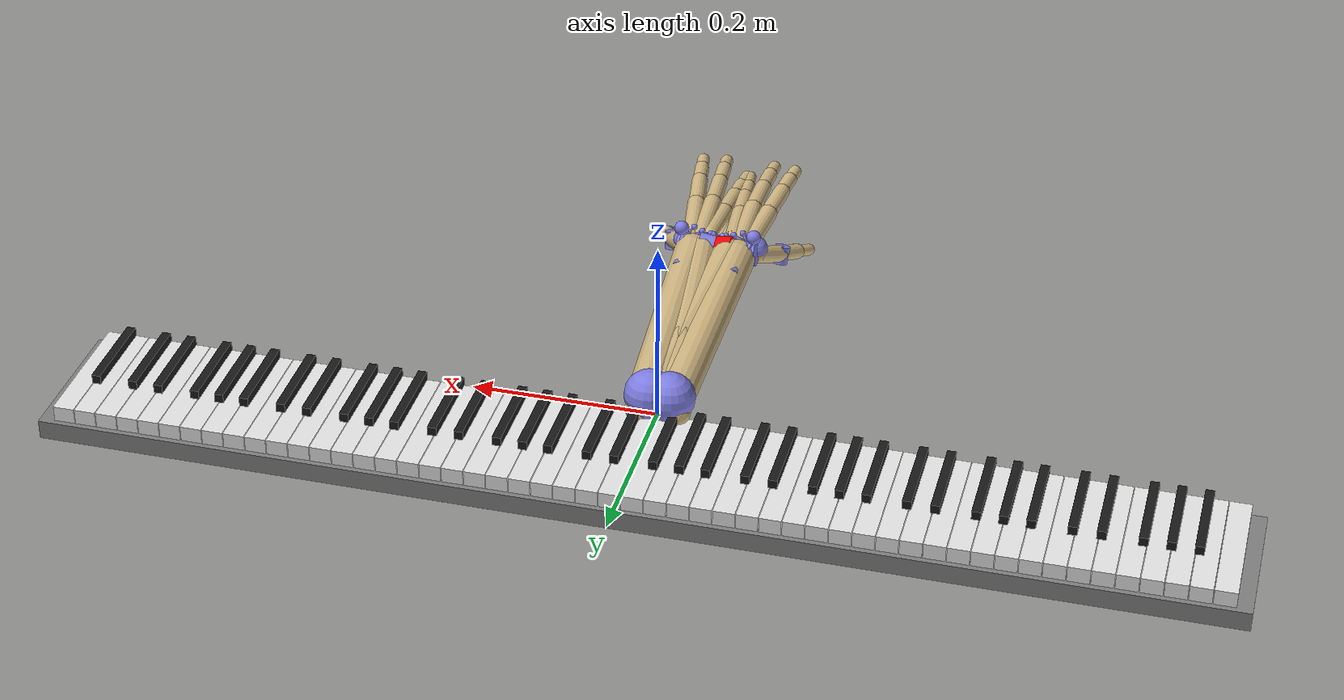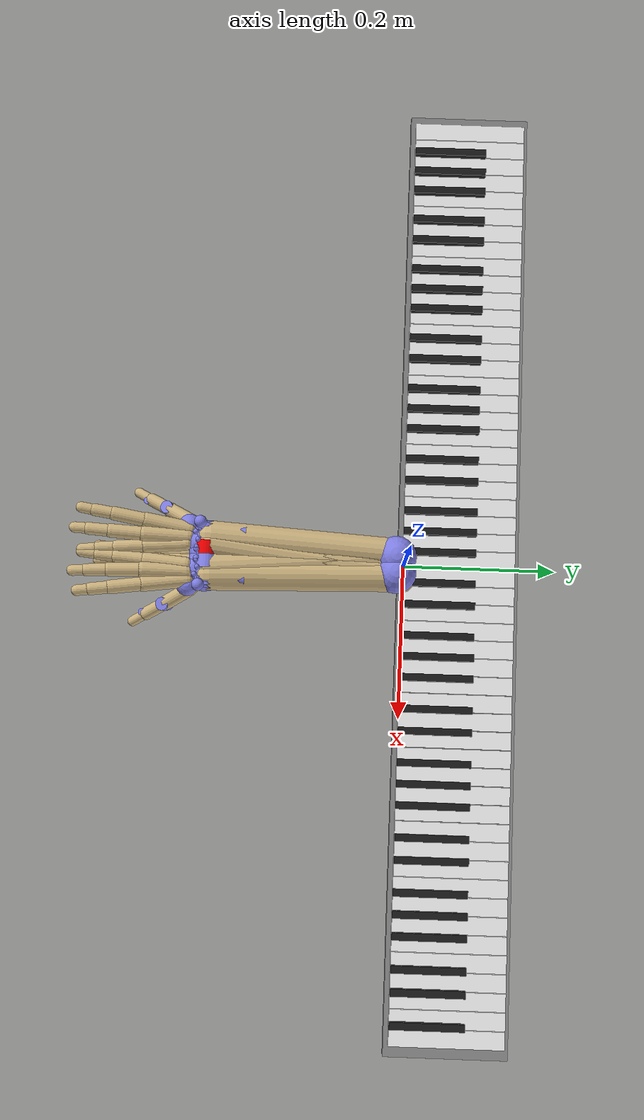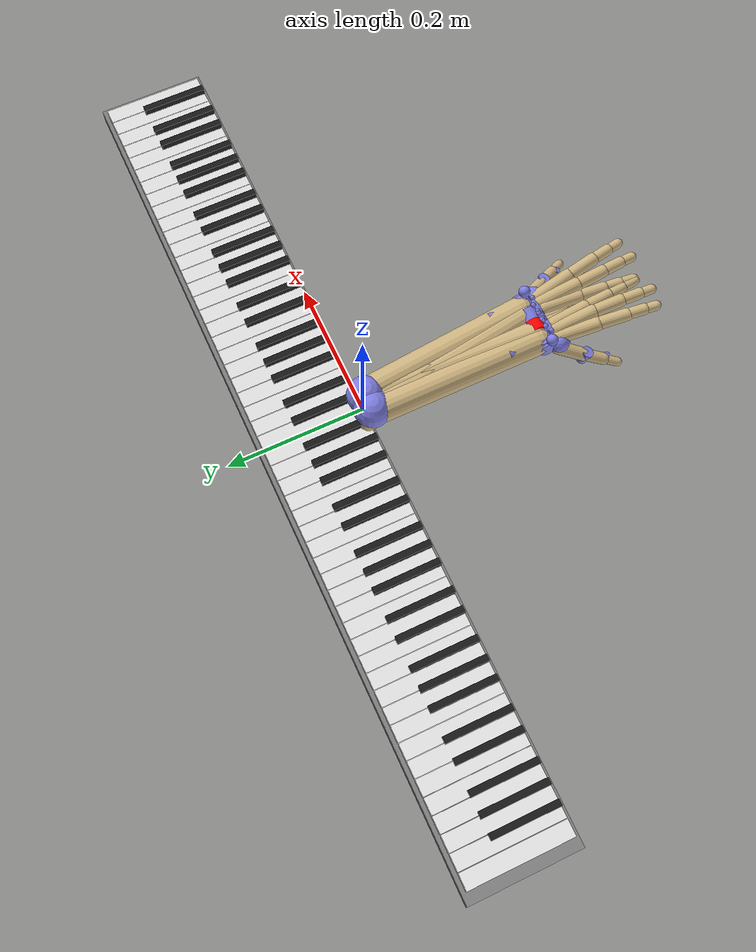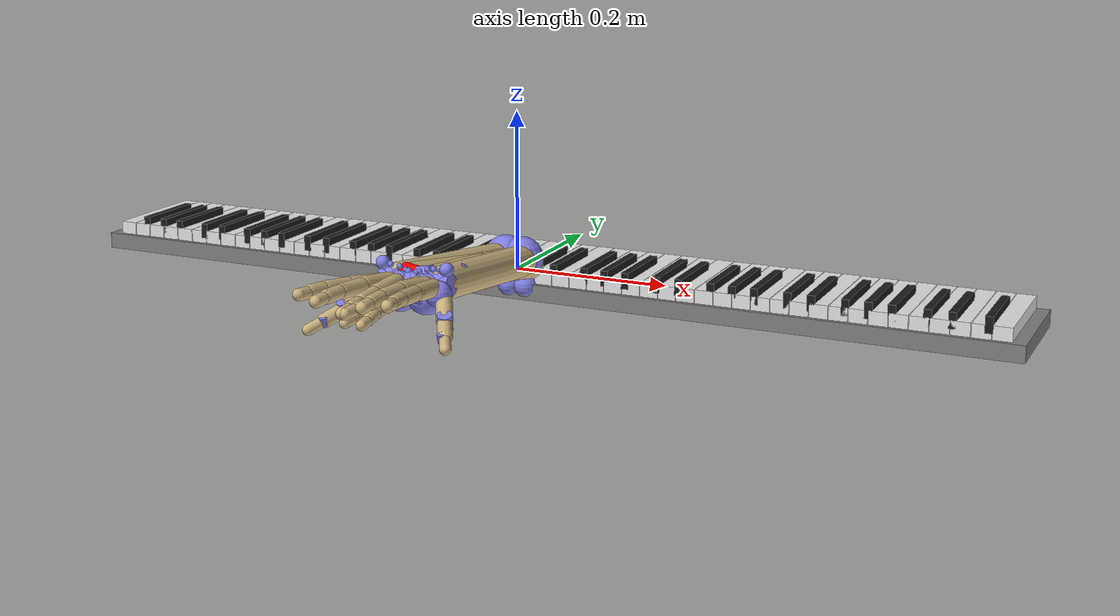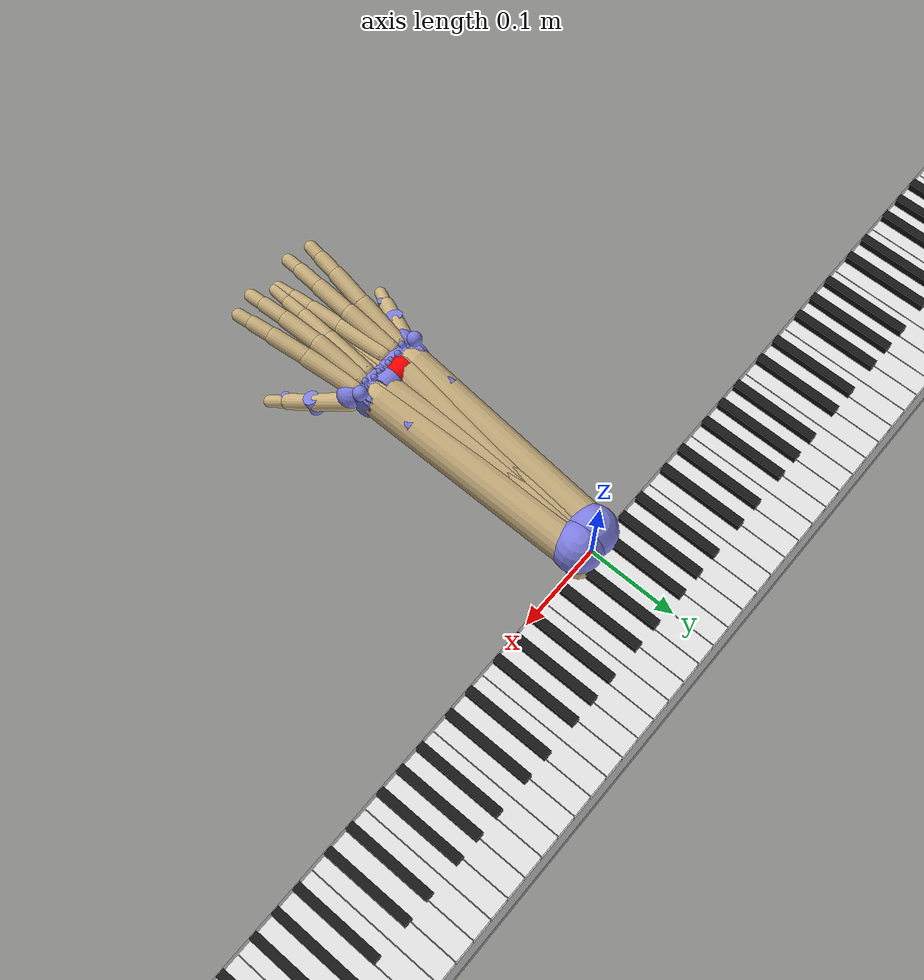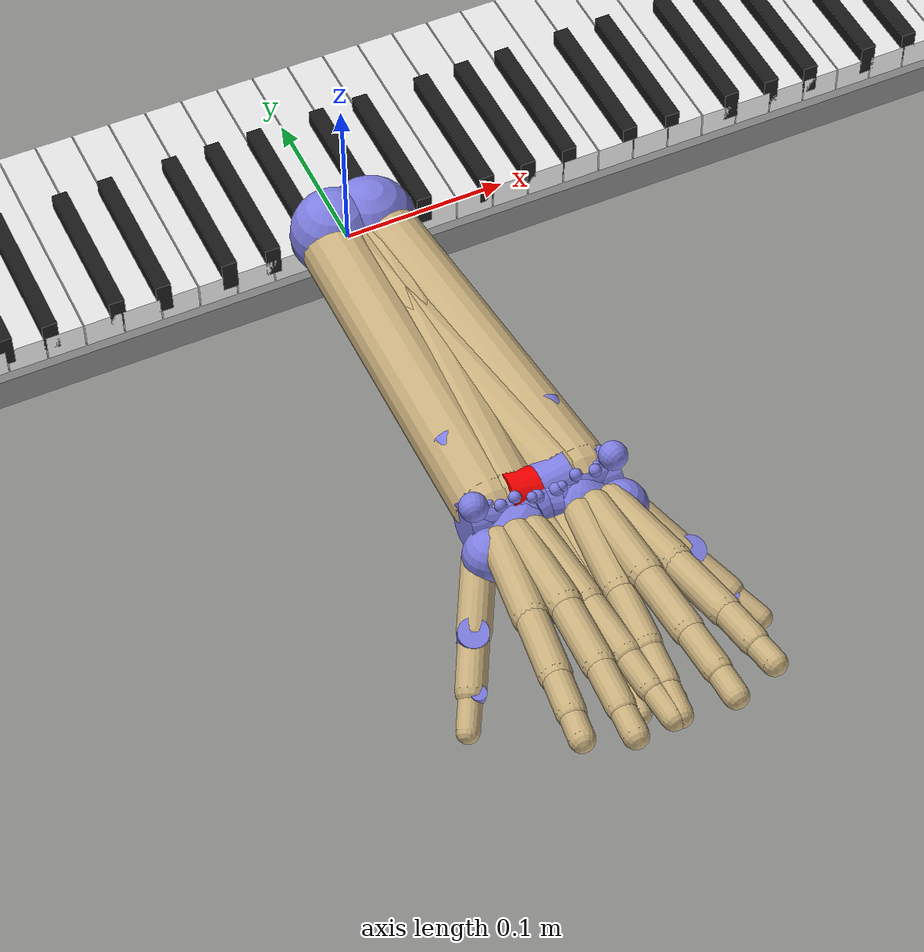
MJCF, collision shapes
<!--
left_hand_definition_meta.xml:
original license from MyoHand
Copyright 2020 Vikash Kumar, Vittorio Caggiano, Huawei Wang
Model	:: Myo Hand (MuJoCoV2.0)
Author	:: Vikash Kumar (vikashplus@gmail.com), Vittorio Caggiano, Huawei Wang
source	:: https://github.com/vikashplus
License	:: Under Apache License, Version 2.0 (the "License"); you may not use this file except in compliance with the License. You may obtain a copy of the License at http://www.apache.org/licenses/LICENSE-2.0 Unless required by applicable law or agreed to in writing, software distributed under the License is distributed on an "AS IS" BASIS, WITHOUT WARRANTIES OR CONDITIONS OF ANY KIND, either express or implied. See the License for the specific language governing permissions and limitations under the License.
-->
<mujoco model="MUSIC-Hand-v0.15">

    <include file="defaults.xml" />
    <include file="left_assets/left_hand_definition_meta.xml" />
    <include file="right_assets/right_hand_definition_meta.xml" />

    <include file="left_assets/left_hand_actuators_joint.xml"/>
    <include file="right_assets/right_hand_actuators_joint.xml"/>

    <asset>
    </asset>

    <visual>
        <global offwidth="1920" offheight="1080"/>
        <headlight ambient=".5 .5 .5" diffuse="0.50 0.50 0.50" specular="0.50 0.50 0.50"/>
        <rgba actuator='.7 .4 .4 1' actuatorpositive='1 0 0 1' actuatornegative='.175 .1 .1 1'/>
    </visual>

    <worldbody>

        <include file="left_assets/left_hand_6d_root.xml"/>
        <include file="right_assets/right_hand_6d_root.xml"/>

        <include file="piano_assets/piano_ds6.5.xml"/>

    </worldbody>

</mujoco>

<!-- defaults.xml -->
<mujocoinclude model="MUSIC-Hand-v0.15">
        <compiler inertiafromgeom="auto" angle="radian" balanceinertia="true" boundmass="0.001" boundinertia=".0001" meshdir="." texturedir="."/>
        <size njmax="1000" nconmax="400" nuser_jnt="1"/>
        <!-- 480 FPS -->
        <option timestep="0.00208333333" impratio="10" gravity="0 0 0"/>

        <asset>
            <texture name="texgeom" type="cube" builtin="flat" mark="cross" width="127" height="1278" rgb1="0.7 0.7 0.7" rgb2="0.9 0.9 0.9" markrgb="1 1 1" random="0.01"/>
            <material name="geom" texture="texgeom" texuniform="true"/>
            <material name="MatSkin" specular="0.2" shininess=".1" reflectance="0.5" rgba="0.9 .7 .5 1"/>
        </asset>

        <default>
            <default class="music-hand">
              <joint limited="true" damping="0.05" armature="1e-4" stiffness="0"/>
              <geom contype="0" conaffinity="0" condim="3" rgba="0.8 0.8 .8 1" solref=".02 1" solimp=".8 .8 .01" material="geom"/>
              <site size="0.0012" rgba=".2 .6 .2 1" group="3"/>
              <tendon width="0.001" rgba=".95 .3 .3 1" limited="false" />
              <default class="L:skin_arm">
                <geom type="capsule" group="5" contype="56" conaffinity="4" condim="1" rgba="0.8 0.7 .5 1" margin="0.001" material="MatSkin"/>
              </default>
              <default class="L:skin_palm">
                <geom type="capsule" group="4" contype="56" conaffinity="2" condim="3" rgba="0.8 0.7 .5 1" margin="0.001" material="MatSkin"/>
              </default>
              <default class="L:skin_finger">
                <geom type="capsule" group="5" contype="59" conaffinity="1" condim="3" rgba="0.8 0.7 .5 1" margin="0.001" material="MatSkin"/>
              </default>
              <default class="R:skin_arm">
                <geom type="capsule" group="5" contype="7" conaffinity="32" condim="1" rgba="0.8 0.7 .5 1" margin="0.001" material="MatSkin"/>
              </default>
              <default class="R:skin_palm">
                <geom type="capsule" group="4" contype="7" conaffinity="16" condim="3" rgba="0.8 0.7 .5 1" margin="0.001" material="MatSkin"/>
              </default>
              <default class="R:skin_finger">
                <geom type="capsule" group="5" contype="31" conaffinity="8" condim="3" rgba="0.8 0.7 .5 1" margin="0.001" material="MatSkin"/>
              </default>
              <default class="wrap">
                <geom rgba=".5 .5 .9 1" group="3" contype="0" conaffinity="0"/>
              </default>
              <default class="muscle">
                <muscle ctrllimited="true" ctrlrange="0 1" />
              </default>
            </default>
            <default class="white_key">
            <!--   range limit is decided by end position with travel depth of 0.01 i.e. arcsin(0.01/0.148)   -->
            <joint type="hinge" axis="1 0 0" pos="0 0 0" limited="true" range="-0.0676190854 0" solreflimit=".01 1" solimplimit=".95 .99 .001" stiffness="2" damping="0.05" armature="1e-3" />
            <geom group="2" type="box" condim="3" contype="9" conaffinity="0" solref=".02 1" solimp=".9 .95 .001" margin="0" priority="1" size="0.011313735 0.074 0.0105" pos="0 0.074 0" mass="0.04" rgba=".9 .9 .9 1"/>
            </default>
            <default class="black_key">
            <!--   range limit is decided by end position with travel depth of 0.008, i.e. arcsin(0.008/0.096)   -->
            <joint type="hinge" axis="1 0 0" pos="0 0 0" limited="true" range="-0.08333333333 0" solreflimit=".01 1" solimplimit=".95 .99 .001" stiffness="2" damping="0.05" armature="1e-3" />
            <!--   top width 0.0095, bottom width 0.011, bottom width with spacing 0.015   -->
            <geom group="2" type="box" condim="3" contype="9" conaffinity="0" solref=".02 1" solimp=".9 .95 .001" margin="0" priority="1" size="0.00475 0.048 0.01" pos="0 0.048 0" mass="0.02" rgba=".1 .1 .1 1"/>
            </default>
        </default>

      <custom>
        <numeric data="30" name="max_contact_points"/>
        <numeric data="500" name="max_geom_pairs"/>
      </custom>

</mujocoinclude>

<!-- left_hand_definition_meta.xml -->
<mujocoinclude model="MUSIC-Hand-v0.15">
        <asset>
            <!-- Modified from MyoHand. -->

            <mesh name="L:humerus" file="left_meshes/humerus.stl" scale="1 1 1"/>
            <mesh name="L:ulna" file="left_meshes/ulna.stl" scale="1 1 1"/>
            <mesh name="L:radius" file="left_meshes/radius.stl" scale="1 1 1"/>
            <mesh name="L:lunate" file="left_meshes/lunate.stl" scale="1 1 1"/>
            <mesh name="L:scaphoid" file="left_meshes/scaphoid.stl" scale="1 1 1"/>
            <mesh name="L:pisiform" file="left_meshes/pisiform.stl" scale="1 1 1"/>
            <mesh name="L:triquetrum" file="left_meshes/triquetrum.stl" scale="1 1 1"/>
            <mesh name="L:capitate" file="left_meshes/capitate.stl" scale="1 1 1"/>
            <mesh name="L:trapezium" file="left_meshes/trapezium.stl" scale="1 1 1"/>
            <mesh name="L:1mc" file="left_meshes/1mc.stl" scale="1 1 1"/>
            <mesh name="L:thumbprox" file="left_meshes/thumbprox.stl" scale="1 1 1"/>
            <mesh name="L:thumbdist" file="left_meshes/thumbdist.stl" scale="1 1 1"/>
            <mesh name="L:trapezoid" file="left_meshes/trapezoid.stl" scale="1 1 1"/>
            <mesh name="L:hamate" file="left_meshes/hamate.stl" scale="1 1 1"/>
            <mesh name="L:2mc" file="left_meshes/2mc.stl" scale="1 1 1"/>
            <mesh name="L:2proxph" file="left_meshes/2proxph.stl" scale="1 1 1"/>
            <mesh name="L:2midph" file="left_meshes/2midph.stl" scale="1 1 1"/>
            <mesh name="L:2distph" file="left_meshes/2distph.stl" scale="1 1 1"/>
            <mesh name="L:3mc" file="left_meshes/3mc.stl" scale="1 1 1"/>
            <mesh name="L:3proxph" file="left_meshes/3proxph.stl" scale="1 1 1"/>
            <mesh name="L:3midph" file="left_meshes/3midph.stl" scale="1 1 1"/>
            <mesh name="L:3distph" file="left_meshes/3distph.stl" scale="1 1 1"/>
            <mesh name="L:4mc" file="left_meshes/4mc.stl" scale="1 1 1"/>
            <mesh name="L:4proxph" file="left_meshes/4proxph.stl" scale="1 1 1"/>
            <mesh name="L:4midph" file="left_meshes/4midph.stl" scale="1 1 1"/>
            <mesh name="L:4distph" file="left_meshes/4distph.stl" scale="1 1 1"/>
            <mesh name="L:5mc" file="left_meshes/5mc.stl" scale="1 1 1"/>
            <mesh name="L:5proxph" file="left_meshes/5proxph.stl" scale="1 1 1"/>
            <mesh name="L:5midph" file="left_meshes/5midph.stl" scale="1 1 1"/>
            <mesh name="L:5distph" file="left_meshes/5distph.stl" scale="1 1 1"/>
        </asset>

        <contact>
            <exclude body1="L:proxph2" body2="L:proxph3"/>
            <exclude body1="L:proxph3" body2="L:proxph4"/>
            <exclude body1="L:proxph4" body2="L:proxph5"/>

            <exclude body1="L:proxph2" body2="L:proxph4"/>
            <exclude body1="L:proxph2" body2="L:proxph5"/>
            <exclude body1="L:proxph3" body2="L:proxph5"/>

        </contact>

</mujocoinclude>

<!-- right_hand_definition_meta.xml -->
<mujocoinclude model="MUSIC-Hand-v0.15">
        <asset>
            <!-- Extracted from MyoHand. -->

            <mesh name="R:humerus" file="right_meshes/humerus.stl" scale="1 1 1"/>
            <mesh name="R:ulna" file="right_meshes/ulna.stl" scale="1 1 1"/>
            <mesh name="R:radius" file="right_meshes/radius.stl" scale="1 1 1"/>
            <mesh name="R:lunate" file="right_meshes/lunate.stl" scale="1 1 1"/>
            <mesh name="R:scaphoid" file="right_meshes/scaphoid.stl" scale="1 1 1"/>
            <mesh name="R:pisiform" file="right_meshes/pisiform.stl" scale="1 1 1"/>
            <mesh name="R:triquetrum" file="right_meshes/triquetrum.stl" scale="1 1 1"/>
            <mesh name="R:capitate" file="right_meshes/capitate.stl" scale="1 1 1"/>
            <mesh name="R:trapezium" file="right_meshes/trapezium.stl" scale="1 1 1"/>
            <mesh name="R:1mc" file="right_meshes/1mc.stl" scale="1 1 1"/>
            <mesh name="R:thumbprox" file="right_meshes/thumbprox.stl" scale="1 1 1"/>
            <mesh name="R:thumbdist" file="right_meshes/thumbdist.stl" scale="1 1 1"/>
            <mesh name="R:trapezoid" file="right_meshes/trapezoid.stl" scale="1 1 1"/>
            <mesh name="R:hamate" file="right_meshes/hamate.stl" scale="1 1 1"/>
            <mesh name="R:2mc" file="right_meshes/2mc.stl" scale="1 1 1"/>
            <mesh name="R:2proxph" file="right_meshes/2proxph.stl" scale="1 1 1"/>
            <mesh name="R:2midph" file="right_meshes/2midph.stl" scale="1 1 1"/>
            <mesh name="R:2distph" file="right_meshes/2distph.stl" scale="1 1 1"/>
            <mesh name="R:3mc" file="right_meshes/3mc.stl" scale="1 1 1"/>
            <mesh name="R:3proxph" file="right_meshes/3proxph.stl" scale="1 1 1"/>
            <mesh name="R:3midph" file="right_meshes/3midph.stl" scale="1 1 1"/>
            <mesh name="R:3distph" file="right_meshes/3distph.stl" scale="1 1 1"/>
            <mesh name="R:4mc" file="right_meshes/4mc.stl" scale="1 1 1"/>
            <mesh name="R:4proxph" file="right_meshes/4proxph.stl" scale="1 1 1"/>
            <mesh name="R:4midph" file="right_meshes/4midph.stl" scale="1 1 1"/>
            <mesh name="R:4distph" file="right_meshes/4distph.stl" scale="1 1 1"/>
            <mesh name="R:5mc" file="right_meshes/5mc.stl" scale="1 1 1"/>
            <mesh name="R:5proxph" file="right_meshes/5proxph.stl" scale="1 1 1"/>
            <mesh name="R:5midph" file="right_meshes/5midph.stl" scale="1 1 1"/>
            <mesh name="R:5distph" file="right_meshes/5distph.stl" scale="1 1 1"/>
        </asset>

        <contact>
            <exclude body1="R:proxph2" body2="R:proxph3"/>
            <exclude body1="R:proxph3" body2="R:proxph4"/>
            <exclude body1="R:proxph4" body2="R:proxph5"/>

            <exclude body1="R:proxph2" body2="R:proxph4"/>
            <exclude body1="R:proxph2" body2="R:proxph5"/>
            <exclude body1="R:proxph3" body2="R:proxph5"/>

        </contact>
</mujocoinclude>

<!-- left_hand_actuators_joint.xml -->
<mujocoinclude model="MUSIC-Hand-v0.15">
        <actuator>
            <position name="L:elbow_x" joint="L:elbow_x" ctrllimited="true" ctrlrange="-2 2" forcelimited="true" forcerange="-50 50" kp="20" kv="2"/>
            <position name="L:elbow_y" joint="L:elbow_y" ctrllimited="true" ctrlrange="-2 2" forcelimited="true" forcerange="-50 50" kp="20" kv="2"/>
            <position name="L:elbow_z" joint="L:elbow_z" ctrllimited="true" ctrlrange="-2 2" forcelimited="true" forcerange="-50 50" kp="20" kv="2"/>
            <position name="L:elbow_rx" joint="L:elbow_rx" ctrllimited="true" ctrlrange="-2 2" forcelimited="true" forcerange="-50 50" kp="10" kv="1"/>
            <position name="L:elbow_ry" joint="L:elbow_ry" ctrllimited="true" ctrlrange="-2 2" forcelimited="true" forcerange="-50 50" kp="10" kv="1"/>
            <position name="L:elbow_rz" joint="L:elbow_rz" ctrllimited="true" ctrlrange="-2 2" forcelimited="true" forcerange="-50 50" kp="10" kv="1"/>

            <position name="L:pro_sup" joint="L:pro_sup" ctrllimited="true" ctrlrange="-2 2" forcelimited="true" forcerange="-20 20" kp="10" kv="0.1" />
            <position name="L:deviation" joint="L:deviation" ctrllimited="true" ctrlrange="-2 2" forcelimited="true" forcerange="-20 20" kp="10" kv="0.1" />
            <position name="L:flexion" joint="L:flexion" ctrllimited="true" ctrlrange="-2 2" forcelimited="true" forcerange="-20 20" kp="10" kv="0.1" />

            <position name="L:cmc_abduction" joint="L:cmc_abduction" ctrllimited="true" ctrlrange="-2 2" forcelimited="true" forcerange="-10 10" kp="10" kv="0.1" />
            <position name="L:cmc_flexion" joint="L:cmc_flexion" ctrllimited="true" ctrlrange="-2 2" forcelimited="true" forcerange="-10 10" kp="10" kv="0.1" />
            <position name="L:mp_flexion" joint="L:mp_flexion" ctrllimited="true" ctrlrange="-2 2" forcelimited="true" forcerange="-10 10" kp="10" kv="0.1" />
            <position name="L:ip_flexion" joint="L:ip_flexion" ctrllimited="true" ctrlrange="-2 2" forcelimited="true" forcerange="-10 10" kp="10" kv="0.1" />
            <position name="L:mcp2_flexion" joint="L:mcp2_flexion" ctrllimited="true" ctrlrange="-2 2" forcelimited="true" forcerange="-10 10" kp="10" kv="0.1" />
            <position name="L:mcp2_abduction" joint="L:mcp2_abduction" ctrllimited="true" ctrlrange="-2 2" forcelimited="true" forcerange="-10 10" kp="10" kv="0.1" />
            <position name="L:pm2_flexion" joint="L:pm2_flexion" ctrllimited="true" ctrlrange="-2 2" forcelimited="true" forcerange="-10 10" kp="10" kv="0.1" />
            <position name="L:md2_flexion" joint="L:md2_flexion" ctrllimited="true" ctrlrange="-2 2" forcelimited="true" forcerange="-10 10" kp="10" kv="0.1" />
            <position name="L:mcp3_flexion" joint="L:mcp3_flexion" ctrllimited="true" ctrlrange="-2 2" forcelimited="true" forcerange="-10 10" kp="10" kv="0.1" />
            <position name="L:mcp3_abduction" joint="L:mcp3_abduction" ctrllimited="true" ctrlrange="-2 2" forcelimited="true" forcerange="-10 10" kp="10" kv="0.1" />
            <position name="L:pm3_flexion" joint="L:pm3_flexion" ctrllimited="true" ctrlrange="-2 2" forcelimited="true" forcerange="-10 10" kp="10" kv="0.1" />
            <position name="L:md3_flexion" joint="L:md3_flexion" ctrllimited="true" ctrlrange="-2 2" forcelimited="true" forcerange="-10 10" kp="10" kv="0.1" />
            <position name="L:mcp4_flexion" joint="L:mcp4_flexion" ctrllimited="true" ctrlrange="-2 2" forcelimited="true" forcerange="-10 10" kp="10" kv="0.1" />
            <position name="L:mcp4_abduction" joint="L:mcp4_abduction" ctrllimited="true" ctrlrange="-2 2" forcelimited="true" forcerange="-10 10" kp="10" kv="0.1" />
            <position name="L:pm4_flexion" joint="L:pm4_flexion" ctrllimited="true" ctrlrange="-2 2" forcelimited="true" forcerange="-10 10" kp="10" kv="0.1" />
            <position name="L:md4_flexion" joint="L:md4_flexion" ctrllimited="true" ctrlrange="-2 2" forcelimited="true" forcerange="-10 10" kp="10" kv="0.1" />
            <position name="L:mcp5_flexion" joint="L:mcp5_flexion" ctrllimited="true" ctrlrange="-2 2" forcelimited="true" forcerange="-10 10" kp="10" kv="0.1" />
            <position name="L:mcp5_abduction" joint="L:mcp5_abduction" ctrllimited="true" ctrlrange="-2 2" forcelimited="true" forcerange="-10 10" kp="10" kv="0.1" />
            <position name="L:pm5_flexion" joint="L:pm5_flexion" ctrllimited="true" ctrlrange="-2 2" forcelimited="true" forcerange="-10 10" kp="10" kv="0.1" />
            <position name="L:md5_flexion" joint="L:md5_flexion" ctrllimited="true" ctrlrange="-2 2" forcelimited="true" forcerange="-10 10" kp="10" kv="0.1" />
        </actuator>
</mujocoinclude>

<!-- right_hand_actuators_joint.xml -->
<mujocoinclude model="MUSIC-Hand-v0.15">
        <actuator>
            <position name="R:elbow_x" joint="R:elbow_x" ctrllimited="true" ctrlrange="-2 2" forcelimited="true" forcerange="-50 50" kp="20" kv="2"/>
            <position name="R:elbow_y" joint="R:elbow_y" ctrllimited="true" ctrlrange="-2 2" forcelimited="true" forcerange="-50 50" kp="20" kv="2"/>
            <position name="R:elbow_z" joint="R:elbow_z" ctrllimited="true" ctrlrange="-2 2" forcelimited="true" forcerange="-50 50" kp="20" kv="2"/>
            <position name="R:elbow_rx" joint="R:elbow_rx" ctrllimited="true" ctrlrange="-2 2" forcelimited="true" forcerange="-50 50" kp="10" kv="1"/>
            <position name="R:elbow_ry" joint="R:elbow_ry" ctrllimited="true" ctrlrange="-2 2" forcelimited="true" forcerange="-50 50" kp="10" kv="1"/>
            <position name="R:elbow_rz" joint="R:elbow_rz" ctrllimited="true" ctrlrange="-2 2" forcelimited="true" forcerange="-50 50" kp="10" kv="1"/>

            <position name="R:pro_sup" joint="R:pro_sup" ctrllimited="true" ctrlrange="-2 2" forcelimited="true" forcerange="-20 20" kp="10" kv="0.1" />
            <position name="R:deviation" joint="R:deviation" ctrllimited="true" ctrlrange="-2 2" forcelimited="true" forcerange="-20 20" kp="10" kv="0.1" />
            <position name="R:flexion" joint="R:flexion" ctrllimited="true" ctrlrange="-2 2" forcelimited="true" forcerange="-20 20" kp="10" kv="0.1" />

            <position name="R:cmc_abduction" joint="R:cmc_abduction" ctrllimited="true" ctrlrange="-2 2" forcelimited="true" forcerange="-10 10" kp="10" kv="0.1" />
            <position name="R:cmc_flexion" joint="R:cmc_flexion" ctrllimited="true" ctrlrange="-2 2" forcelimited="true" forcerange="-10 10" kp="10" kv="0.1" />
            <position name="R:mp_flexion" joint="R:mp_flexion" ctrllimited="true" ctrlrange="-2 2" forcelimited="true" forcerange="-10 10" kp="10" kv="0.1" />
            <position name="R:ip_flexion" joint="R:ip_flexion" ctrllimited="true" ctrlrange="-2 2" forcelimited="true" forcerange="-10 10" kp="10" kv="0.1" />
            <position name="R:mcp2_flexion" joint="R:mcp2_flexion" ctrllimited="true" ctrlrange="-2 2" forcelimited="true" forcerange="-10 10" kp="10" kv="0.1" />
            <position name="R:mcp2_abduction" joint="R:mcp2_abduction" ctrllimited="true" ctrlrange="-2 2" forcelimited="true" forcerange="-10 10" kp="10" kv="0.1" />
            <position name="R:pm2_flexion" joint="R:pm2_flexion" ctrllimited="true" ctrlrange="-2 2" forcelimited="true" forcerange="-10 10" kp="10" kv="0.1" />
            <position name="R:md2_flexion" joint="R:md2_flexion" ctrllimited="true" ctrlrange="-2 2" forcelimited="true" forcerange="-10 10" kp="10" kv="0.1" />
            <position name="R:mcp3_flexion" joint="R:mcp3_flexion" ctrllimited="true" ctrlrange="-2 2" forcelimited="true" forcerange="-10 10" kp="10" kv="0.1" />
            <position name="R:mcp3_abduction" joint="R:mcp3_abduction" ctrllimited="true" ctrlrange="-2 2" forcelimited="true" forcerange="-10 10" kp="10" kv="0.1" />
            <position name="R:pm3_flexion" joint="R:pm3_flexion" ctrllimited="true" ctrlrange="-2 2" forcelimited="true" forcerange="-10 10" kp="10" kv="0.1" />
            <position name="R:md3_flexion" joint="R:md3_flexion" ctrllimited="true" ctrlrange="-2 2" forcelimited="true" forcerange="-10 10" kp="10" kv="0.1" />
            <position name="R:mcp4_flexion" joint="R:mcp4_flexion" ctrllimited="true" ctrlrange="-2 2" forcelimited="true" forcerange="-10 10" kp="10" kv="0.1" />
            <position name="R:mcp4_abduction" joint="R:mcp4_abduction" ctrllimited="true" ctrlrange="-2 2" forcelimited="true" forcerange="-10 10" kp="10" kv="0.1" />
            <position name="R:pm4_flexion" joint="R:pm4_flexion" ctrllimited="true" ctrlrange="-2 2" forcelimited="true" forcerange="-10 10" kp="10" kv="0.1" />
            <position name="R:md4_flexion" joint="R:md4_flexion" ctrllimited="true" ctrlrange="-2 2" forcelimited="true" forcerange="-10 10" kp="10" kv="0.1" />
            <position name="R:mcp5_flexion" joint="R:mcp5_flexion" ctrllimited="true" ctrlrange="-2 2" forcelimited="true" forcerange="-10 10" kp="10" kv="0.1" />
            <position name="R:mcp5_abduction" joint="R:mcp5_abduction" ctrllimited="true" ctrlrange="-2 2" forcelimited="true" forcerange="-10 10" kp="10" kv="0.1" />
            <position name="R:pm5_flexion" joint="R:pm5_flexion" ctrllimited="true" ctrlrange="-2 2" forcelimited="true" forcerange="-10 10" kp="10" kv="0.1" />
            <position name="R:md5_flexion" joint="R:md5_flexion" ctrllimited="true" ctrlrange="-2 2" forcelimited="true" forcerange="-10 10" kp="10" kv="0.1" />
        </actuator>
</mujocoinclude>

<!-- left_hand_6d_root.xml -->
<mujocoinclude model="MUSIC-Hand-v0.15">
            <body childclass="music-hand" name="L:ulna" pos="-0 0 0">
                <joint type="slide" axis="1 0 0" limited="true" range="-0.65 0.65" stiffness="0" damping="5" armature="0.001" name="L:elbow_x" />
                <joint type="slide" axis="0 1 0" limited="true" range="0.2 0.7" stiffness="0" damping="5" armature="0.001" name="L:elbow_y" />
                <joint type="slide" axis="0 0 1" limited="true" range="-0.2 0.3" stiffness="0" damping="5" armature="0.001" name="L:elbow_z" />
                <joint type="hinge" axis="1 0 0" limited="true" range="-3.14 3.14" stiffness="0" damping="0.5" armature="0.001" name="L:elbow_rx" />
                <joint type="hinge" axis="0 1 0" limited="true" range="-3.14 3.14" stiffness="0" damping="0.5" armature="0.001" name="L:elbow_ry" />
                <joint type="hinge" axis="0 0 1" limited="true" range="-3.14 3.14" stiffness="0" damping="0.5" armature="0.001" name="L:elbow_rz" />

                <include file="left_assets/left_hand_definition.xml" />
            </body>
</mujocoinclude>

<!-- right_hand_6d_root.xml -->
<mujocoinclude model="MUSIC-Hand-v0.15">
            <body childclass="music-hand" name="R:ulna" pos="0 0 0">

                <joint type="slide" axis="1 0 0" limited="true" range="-0.65 0.65" stiffness="0" damping="5" armature="0.001" name="R:elbow_x" />
                <joint type="slide" axis="0 1 0" limited="true" range="0.2 0.7" stiffness="0" damping="5" armature="0.001" name="R:elbow_y" />
                <joint type="slide" axis="0 0 1" limited="true" range="-0.2 0.3" stiffness="0" damping="5" armature="0.001" name="R:elbow_z" />
                <joint type="hinge" axis="1 0 0" limited="true" range="-3.14 3.14" stiffness="0" damping="0.5" armature="0.001" name="R:elbow_rx" />
                <joint type="hinge" axis="0 1 0" limited="true" range="-3.14 3.14" stiffness="0" damping="0.5" armature="0.001" name="R:elbow_ry" />
                <joint type="hinge" axis="0 0 1" limited="true" range="-3.14 3.14" stiffness="0" damping="0.5" armature="0.001" name="R:elbow_rz" />

                <include file="right_assets/right_hand_definition.xml" />
            </body>
</mujocoinclude>

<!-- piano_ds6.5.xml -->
<mujocoinclude model="MUSIC-Hand-v0.15">
              <body name="P:white_key_0" pos="0.6025 0 -0.0105">
              <geom name="P:white_key_0" class="white_key"/>
              <joint name="P:white_joint_0" class="white_key"/>
              </body>
              <body name="P:black_key_1" pos="0.586937 0 0">
              <geom name="P:black_key_1" class="black_key"/>
              <joint name="P:black_joint_1" class="black_key"/>
              </body>
              <body name="P:white_key_2" pos="0.578873 0 -0.0105">
              <geom name="P:white_key_2" class="white_key"/>
              <joint name="P:white_joint_2" class="white_key"/>
              </body>
              <body name="P:white_key_3" pos="0.555246 0 -0.0105">
              <geom name="P:white_key_3" class="white_key"/>
              <joint name="P:white_joint_3" class="white_key"/>
              </body>
              <body name="P:black_key_4" pos="0.545932 0 0">
              <geom name="P:black_key_4" class="black_key"/>
              <joint name="P:black_joint_4" class="black_key"/>
              </body>
              <body name="P:white_key_5" pos="0.531618 0 -0.0105">
              <geom name="P:white_key_5" class="white_key"/>
              <joint name="P:white_joint_5" class="white_key"/>
              </body>
              <body name="P:black_key_6" pos="0.517304 0 0">
              <geom name="P:black_key_6" class="black_key"/>
              <joint name="P:black_joint_6" class="black_key"/>
              </body>
              <body name="P:white_key_7" pos="0.507991 0 -0.0105">
              <geom name="P:white_key_7" class="white_key"/>
              <joint name="P:white_joint_7" class="white_key"/>
              </body>
              <body name="P:white_key_8" pos="0.484363 0 -0.0105">
              <geom name="P:white_key_8" class="white_key"/>
              <joint name="P:white_joint_8" class="white_key"/>
              </body>
              <body name="P:black_key_9" pos="0.476299 0 0">
              <geom name="P:black_key_9" class="black_key"/>
              <joint name="P:black_joint_9" class="black_key"/>
              </body>
              <body name="P:white_key_10" pos="0.460736 0 -0.0105">
              <geom name="P:white_key_10" class="white_key"/>
              <joint name="P:white_joint_10" class="white_key"/>
              </body>
              <body name="P:black_key_11" pos="0.448922 0 0">
              <geom name="P:black_key_11" class="black_key"/>
              <joint name="P:black_joint_11" class="black_key"/>
              </body>
              <body name="P:white_key_12" pos="0.437108 0 -0.0105">
              <geom name="P:white_key_12" class="white_key"/>
              <joint name="P:white_joint_12" class="white_key"/>
              </body>
              <body name="P:black_key_13" pos="0.421544 0 0">
              <geom name="P:black_key_13" class="black_key"/>
              <joint name="P:black_joint_13" class="black_key"/>
              </body>
              <body name="P:white_key_14" pos="0.413481 0 -0.0105">
              <geom name="P:white_key_14" class="white_key"/>
              <joint name="P:white_joint_14" class="white_key"/>
              </body>
              <body name="P:white_key_15" pos="0.389853 0 -0.0105">
              <geom name="P:white_key_15" class="white_key"/>
              <joint name="P:white_joint_15" class="white_key"/>
              </body>
              <body name="P:black_key_16" pos="0.38054 0 0">
              <geom name="P:black_key_16" class="black_key"/>
              <joint name="P:black_joint_16" class="black_key"/>
              </body>
              <body name="P:white_key_17" pos="0.366226 0 -0.0105">
              <geom name="P:white_key_17" class="white_key"/>
              <joint name="P:white_joint_17" class="white_key"/>
              </body>
              <body name="P:black_key_18" pos="0.351912 0 0">
              <geom name="P:black_key_18" class="black_key"/>
              <joint name="P:black_joint_18" class="black_key"/>
              </body>
              <body name="P:white_key_19" pos="0.342598 0 -0.0105">
              <geom name="P:white_key_19" class="white_key"/>
              <joint name="P:white_joint_19" class="white_key"/>
              </body>
              <body name="P:white_key_20" pos="0.318971 0 -0.0105">
              <geom name="P:white_key_20" class="white_key"/>
              <joint name="P:white_joint_20" class="white_key"/>
              </body>
              <body name="P:black_key_21" pos="0.310907 0 0">
              <geom name="P:black_key_21" class="black_key"/>
              <joint name="P:black_joint_21" class="black_key"/>
              </body>
              <body name="P:white_key_22" pos="0.295343 0 -0.0105">
              <geom name="P:white_key_22" class="white_key"/>
              <joint name="P:white_joint_22" class="white_key"/>
              </body>
              <body name="P:black_key_23" pos="0.28353 0 0">
              <geom name="P:black_key_23" class="black_key"/>
              <joint name="P:black_joint_23" class="black_key"/>
              </body>
              <body name="P:white_key_24" pos="0.271716 0 -0.0105">
              <geom name="P:white_key_24" class="white_key"/>
              <joint name="P:white_joint_24" class="white_key"/>
              </body>
              <body name="P:black_key_25" pos="0.256152 0 0">
              <geom name="P:black_key_25" class="black_key"/>
              <joint name="P:black_joint_25" class="black_key"/>
              </body>
              <body name="P:white_key_26" pos="0.248088 0 -0.0105">
              <geom name="P:white_key_26" class="white_key"/>
              <joint name="P:white_joint_26" class="white_key"/>
              </body>
              <body name="P:white_key_27" pos="0.224461 0 -0.0105">
              <geom name="P:white_key_27" class="white_key"/>
              <joint name="P:white_joint_27" class="white_key"/>
              </body>
              <body name="P:black_key_28" pos="0.215147 0 0">
              <geom name="P:black_key_28" class="black_key"/>
              <joint name="P:black_joint_28" class="black_key"/>
              </body>
              <body name="P:white_key_29" pos="0.200833 0 -0.0105">
              <geom name="P:white_key_29" class="white_key"/>
              <joint name="P:white_joint_29" class="white_key"/>
              </body>
              <body name="P:black_key_30" pos="0.18652 0 0">
              <geom name="P:black_key_30" class="black_key"/>
              <joint name="P:black_joint_30" class="black_key"/>
              </body>
              <body name="P:white_key_31" pos="0.177206 0 -0.0105">
              <geom name="P:white_key_31" class="white_key"/>
              <joint name="P:white_joint_31" class="white_key"/>
              </body>
              <body name="P:white_key_32" pos="0.153579 0 -0.0105">
              <geom name="P:white_key_32" class="white_key"/>
              <joint name="P:white_joint_32" class="white_key"/>
              </body>
              <body name="P:black_key_33" pos="0.145515 0 0">
              <geom name="P:black_key_33" class="black_key"/>
              <joint name="P:black_joint_33" class="black_key"/>
              </body>
              <body name="P:white_key_34" pos="0.129951 0 -0.0105">
              <geom name="P:white_key_34" class="white_key"/>
              <joint name="P:white_joint_34" class="white_key"/>
              </body>
              <body name="P:black_key_35" pos="0.118137 0 0">
              <geom name="P:black_key_35" class="black_key"/>
              <joint name="P:black_joint_35" class="black_key"/>
              </body>
              <body name="P:white_key_36" pos="0.106324 0 -0.0105">
              <geom name="P:white_key_36" class="white_key"/>
              <joint name="P:white_joint_36" class="white_key"/>
              </body>
              <body name="P:black_key_37" pos="0.09076 0 0">
              <geom name="P:black_key_37" class="black_key"/>
              <joint name="P:black_joint_37" class="black_key"/>
              </body>
              <body name="P:white_key_38" pos="0.082696 0 -0.0105">
              <geom name="P:white_key_38" class="white_key"/>
              <joint name="P:white_joint_38" class="white_key"/>
              </body>
              <body name="P:white_key_39" pos="0.059069 0 -0.0105">
              <geom name="P:white_key_39" class="white_key"/>
              <joint name="P:white_joint_39" class="white_key"/>
              </body>
              <body name="P:black_key_40" pos="0.049755 0 0">
              <geom name="P:black_key_40" class="black_key"/>
              <joint name="P:black_joint_40" class="black_key"/>
              </body>
              <body name="P:white_key_41" pos="0.035441 0 -0.0105">
              <geom name="P:white_key_41" class="white_key"/>
              <joint name="P:white_joint_41" class="white_key"/>
              </body>
              <body name="P:black_key_42" pos="0.021127 0 0">
              <geom name="P:black_key_42" class="black_key"/>
              <joint name="P:black_joint_42" class="black_key"/>
              </body>
              <body name="P:white_key_43" pos="0.011814 0 -0.0105">
              <geom name="P:white_key_43" class="white_key"/>
              <joint name="P:white_joint_43" class="white_key"/>
              </body>
              <body name="P:white_key_44" pos="-0.011814 0 -0.0105">
              <geom name="P:white_key_44" class="white_key"/>
              <joint name="P:white_joint_44" class="white_key"/>
              </body>
              <body name="P:black_key_45" pos="-0.019877 0 0">
              <geom name="P:black_key_45" class="black_key"/>
              <joint name="P:black_joint_45" class="black_key"/>
              </body>
              <body name="P:white_key_46" pos="-0.035441 0 -0.0105">
              <geom name="P:white_key_46" class="white_key"/>
              <joint name="P:white_joint_46" class="white_key"/>
              </body>
              <body name="P:black_key_47" pos="-0.047255 0 0">
              <geom name="P:black_key_47" class="black_key"/>
              <joint name="P:black_joint_47" class="black_key"/>
              </body>
              <body name="P:white_key_48" pos="-0.059069 0 -0.0105">
              <geom name="P:white_key_48" class="white_key"/>
              <joint name="P:white_joint_48" class="white_key"/>
              </body>
              <body name="P:black_key_49" pos="-0.074632 0 0">
              <geom name="P:black_key_49" class="black_key"/>
              <joint name="P:black_joint_49" class="black_key"/>
              </body>
              <body name="P:white_key_50" pos="-0.082696 0 -0.0105">
              <geom name="P:white_key_50" class="white_key"/>
              <joint name="P:white_joint_50" class="white_key"/>
              </body>
              <body name="P:white_key_51" pos="-0.106324 0 -0.0105">
              <geom name="P:white_key_51" class="white_key"/>
              <joint name="P:white_joint_51" class="white_key"/>
              </body>
              <body name="P:black_key_52" pos="-0.115637 0 0">
              <geom name="P:black_key_52" class="black_key"/>
              <joint name="P:black_joint_52" class="black_key"/>
              </body>
              <body name="P:white_key_53" pos="-0.129951 0 -0.0105">
              <geom name="P:white_key_53" class="white_key"/>
              <joint name="P:white_joint_53" class="white_key"/>
              </body>
              <body name="P:black_key_54" pos="-0.144265 0 0">
              <geom name="P:black_key_54" class="black_key"/>
              <joint name="P:black_joint_54" class="black_key"/>
              </body>
              <body name="P:white_key_55" pos="-0.153579 0 -0.0105">
              <geom name="P:white_key_55" class="white_key"/>
              <joint name="P:white_joint_55" class="white_key"/>
              </body>
              <body name="P:white_key_56" pos="-0.177206 0 -0.0105">
              <geom name="P:white_key_56" class="white_key"/>
              <joint name="P:white_joint_56" class="white_key"/>
              </body>
              <body name="P:black_key_57" pos="-0.18527 0 0">
              <geom name="P:black_key_57" class="black_key"/>
              <joint name="P:black_joint_57" class="black_key"/>
              </body>
              <body name="P:white_key_58" pos="-0.200833 0 -0.0105">
              <geom name="P:white_key_58" class="white_key"/>
              <joint name="P:white_joint_58" class="white_key"/>
              </body>
              <body name="P:black_key_59" pos="-0.212647 0 0">
              <geom name="P:black_key_59" class="black_key"/>
              <joint name="P:black_joint_59" class="black_key"/>
              </body>
              <body name="P:white_key_60" pos="-0.224461 0 -0.0105">
              <geom name="P:white_key_60" class="white_key"/>
              <joint name="P:white_joint_60" class="white_key"/>
              </body>
              <body name="P:black_key_61" pos="-0.240025 0 0">
              <geom name="P:black_key_61" class="black_key"/>
              <joint name="P:black_joint_61" class="black_key"/>
              </body>
              <body name="P:white_key_62" pos="-0.248088 0 -0.0105">
              <geom name="P:white_key_62" class="white_key"/>
              <joint name="P:white_joint_62" class="white_key"/>
              </body>
              <body name="P:white_key_63" pos="-0.271716 0 -0.0105">
              <geom name="P:white_key_63" class="white_key"/>
              <joint name="P:white_joint_63" class="white_key"/>
              </body>
              <body name="P:black_key_64" pos="-0.28103 0 0">
              <geom name="P:black_key_64" class="black_key"/>
              <joint name="P:black_joint_64" class="black_key"/>
              </body>
              <body name="P:white_key_65" pos="-0.295343 0 -0.0105">
              <geom name="P:white_key_65" class="white_key"/>
              <joint name="P:white_joint_65" class="white_key"/>
              </body>
              <body name="P:black_key_66" pos="-0.309657 0 0">
              <geom name="P:black_key_66" class="black_key"/>
              <joint name="P:black_joint_66" class="black_key"/>
              </body>
              <body name="P:white_key_67" pos="-0.318971 0 -0.0105">
              <geom name="P:white_key_67" class="white_key"/>
              <joint name="P:white_joint_67" class="white_key"/>
              </body>
              <body name="P:white_key_68" pos="-0.342598 0 -0.0105">
              <geom name="P:white_key_68" class="white_key"/>
              <joint name="P:white_joint_68" class="white_key"/>
              </body>
              <body name="P:black_key_69" pos="-0.350662 0 0">
              <geom name="P:black_key_69" class="black_key"/>
              <joint name="P:black_joint_69" class="black_key"/>
              </body>
              <body name="P:white_key_70" pos="-0.366226 0 -0.0105">
              <geom name="P:white_key_70" class="white_key"/>
              <joint name="P:white_joint_70" class="white_key"/>
              </body>
              <body name="P:black_key_71" pos="-0.37804 0 0">
              <geom name="P:black_key_71" class="black_key"/>
              <joint name="P:black_joint_71" class="black_key"/>
              </body>
              <body name="P:white_key_72" pos="-0.389853 0 -0.0105">
              <geom name="P:white_key_72" class="white_key"/>
              <joint name="P:white_joint_72" class="white_key"/>
              </body>
              <body name="P:black_key_73" pos="-0.405417 0 0">
              <geom name="P:black_key_73" class="black_key"/>
              <joint name="P:black_joint_73" class="black_key"/>
              </body>
              <body name="P:white_key_74" pos="-0.413481 0 -0.0105">
              <geom name="P:white_key_74" class="white_key"/>
              <joint name="P:white_joint_74" class="white_key"/>
              </body>
              <body name="P:white_key_75" pos="-0.437108 0 -0.0105">
              <geom name="P:white_key_75" class="white_key"/>
              <joint name="P:white_joint_75" class="white_key"/>
              </body>
              <body name="P:black_key_76" pos="-0.446422 0 0">
              <geom name="P:black_key_76" class="black_key"/>
              <joint name="P:black_joint_76" class="black_key"/>
              </body>
              <body name="P:white_key_77" pos="-0.460736 0 -0.0105">
              <geom name="P:white_key_77" class="white_key"/>
              <joint name="P:white_joint_77" class="white_key"/>
              </body>
              <body name="P:black_key_78" pos="-0.475049 0 0">
              <geom name="P:black_key_78" class="black_key"/>
              <joint name="P:black_joint_78" class="black_key"/>
              </body>
              <body name="P:white_key_79" pos="-0.484363 0 -0.0105">
              <geom name="P:white_key_79" class="white_key"/>
              <joint name="P:white_joint_79" class="white_key"/>
              </body>
              <body name="P:white_key_80" pos="-0.507991 0 -0.0105">
              <geom name="P:white_key_80" class="white_key"/>
              <joint name="P:white_joint_80" class="white_key"/>
              </body>
              <body name="P:black_key_81" pos="-0.516054 0 0">
              <geom name="P:black_key_81" class="black_key"/>
              <joint name="P:black_joint_81" class="black_key"/>
              </body>
              <body name="P:white_key_82" pos="-0.531618 0 -0.0105">
              <geom name="P:white_key_82" class="white_key"/>
              <joint name="P:white_joint_82" class="white_key"/>
              </body>
              <body name="P:black_key_83" pos="-0.543432 0 0">
              <geom name="P:black_key_83" class="black_key"/>
              <joint name="P:black_joint_83" class="black_key"/>
              </body>
              <body name="P:white_key_84" pos="-0.555246 0 -0.0105">
              <geom name="P:white_key_84" class="white_key"/>
              <joint name="P:white_joint_84" class="white_key"/>
              </body>
              <body name="P:black_key_85" pos="-0.570809 0 0">
              <geom name="P:black_key_85" class="black_key"/>
              <joint name="P:black_joint_85" class="black_key"/>
              </body>
              <body name="P:white_key_86" pos="-0.578873 0 -0.0105">
              <geom name="P:white_key_86" class="white_key"/>
              <joint name="P:white_joint_86" class="white_key"/>
              </body>
              <body name="P:white_key_87" pos="-0.6025 0 -0.0105">
              <geom name="P:white_key_87" class="white_key"/>
              <joint name="P:white_joint_87" class="white_key"/>
              </body>

              <!-- 17mm below the white key surface -->
              <geom name="P:bottom_frame" type="box" pos="0 0.074 -0.0275" size="0.63 0.08 0.0105" contype="0" conaffinity="0" />

</mujocoinclude>
